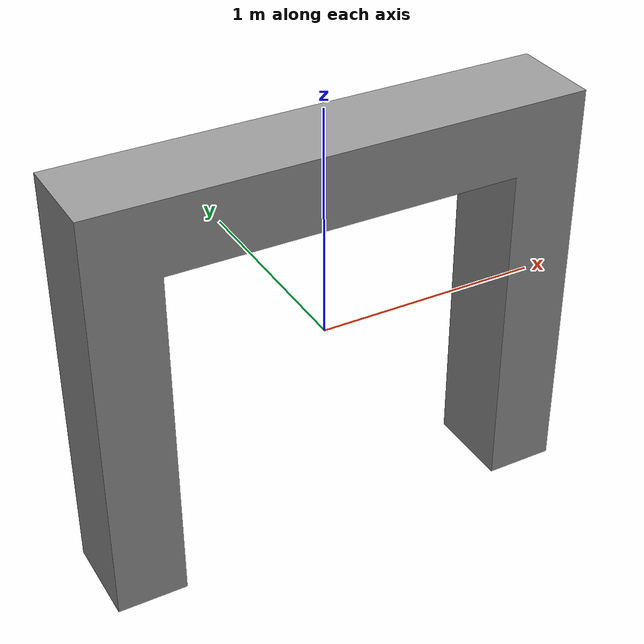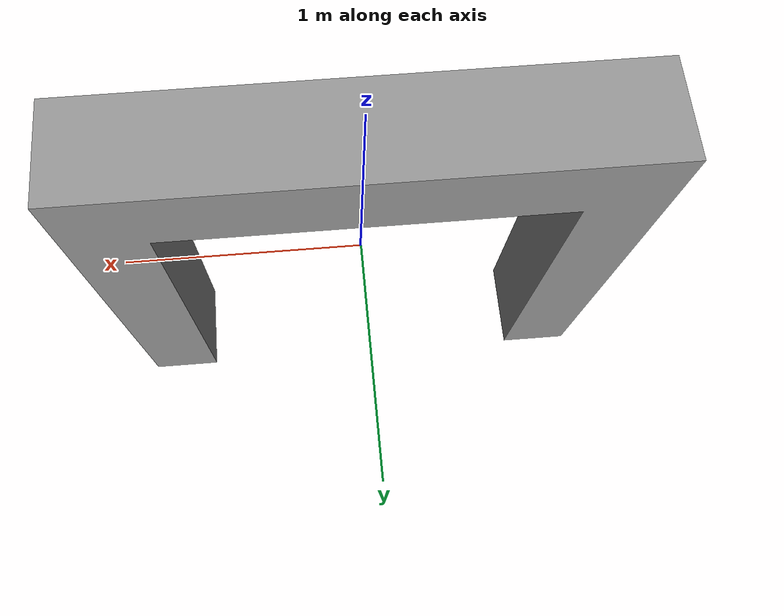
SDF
<?xml version="1.0" ?>
<sdf version='1.7'>
  <model name='target'>
    <link name='base_link'>
      <inertial>
        <pose>0 -0 0.22558 0 -0 0</pose>
        <mass>565.15</mass>
        <inertia>
          <ixx>187.92</ixx>
          <ixy>1.3632e-14</ixy>
          <ixz>1.5708e-13</ixz>
          <iyy>546.66</iyy>
          <iyz>-1.4528e-14</iyz>
          <izz>373.81</izz>
        </inertia>
      </inertial>
      <collision name='base_link_collision'>
        <pose>0 0 0 0 -0 0</pose>
        <geometry>
          <mesh>
            <scale>1 1 1</scale>
            <uri>model://target/meshes/base_link.STL</uri>
          </mesh>
        </geometry>
      </collision>
      <visual name='base_link_visual'>
        <pose>0 0 0 0 -0 0</pose>
        <geometry>
          <mesh>
            <scale>1 1 1</scale>
            <uri>model://target/meshes/base_link.dae</uri>
          </mesh>
        </geometry>
      </visual>
    </link>
  </model>
</sdf>
